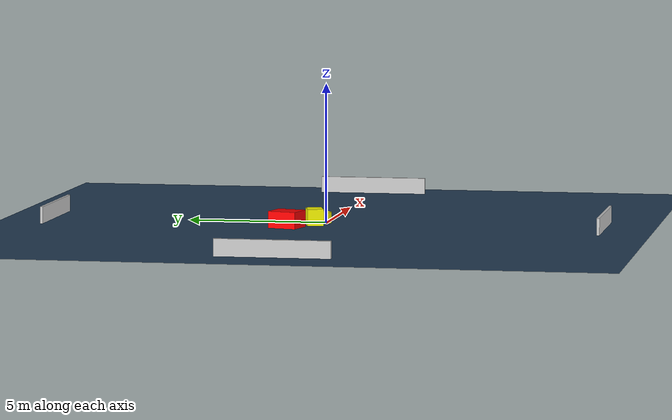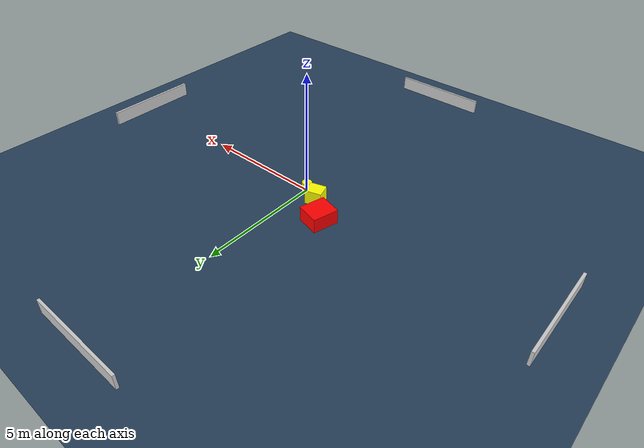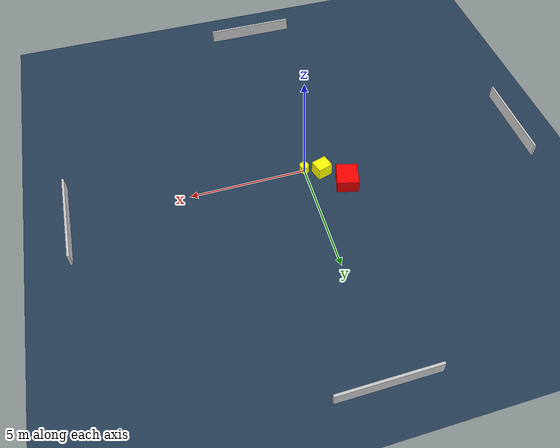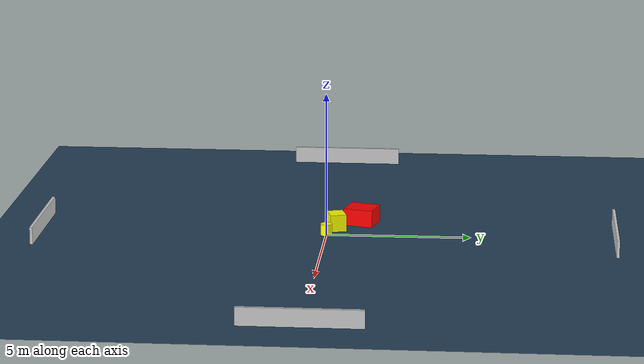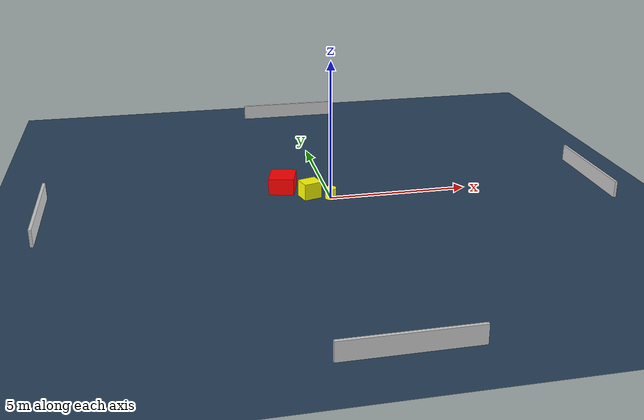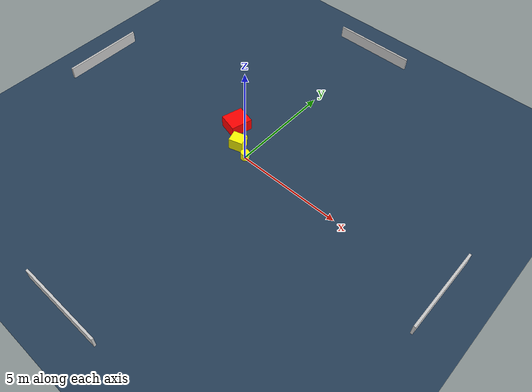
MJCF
<?xml version="1.0" ?>
<mujoco model="generated_environment">
  <option timestep="0.01" integrator="RK4" cone="elliptic"/>
  <default>
    <geom density="1"/>
  </default>
  <asset>
    <texture builtin="gradient" height="3072" name="skybox" rgb1="0.3 0.5 0.7" rgb2="0 0 0" type="skybox" width="512"/>
    <texture builtin="checker" height="300" name="groundplane" rgb1="0.2 0.3 0.4" rgb2="0.1 0.2 0.3" type="2d" width="300"/>
    <material name="groundplane" reflectance="0.2" texrepeat="5 5" texture="groundplane"/>
  </asset>
  <worldbody>
    <light dir="0 0 -1" directional="true" pos="0 0 1.5"/>
    <geom condim="3" friction="0.5 0.005 0.001" material="groundplane" name="floor" pos="0 0 0" size="0 0 0.05" type="plane"/>
    <body name="walls">
      <geom name="wall_1" condim="4" pos="-10.0 0.0 0.3" rgba="0.800000011920929 0.800000011920929 0.800000011920929 1.0" size="0.05 2.0 0.3" type="box"/>
      <geom name="wall_2" condim="4" pos="10.0 0.0 0.3" rgba="0.800000011920929 0.800000011920929 0.800000011920929 1.0" size="0.05 2.0 0.3" type="box"/>
      <geom name="wall_3" condim="4" pos="0.0 -10.0 0.3" rgba="0.800000011920929 0.800000011920929 0.800000011920929 1.0" size="2.0 0.05 0.3" type="box"/>
      <geom name="wall_4" condim="4" pos="0.0 10.0 0.3" rgba="0.800000011920929 0.800000011920929 0.800000011920929 1.0" size="2.0 0.05 0.3" type="box"/>
    </body>
    <body name="robot">
      <joint name="joint_x" type="slide" pos="0 0 0" axis="1 0 0"/>
      <joint name="joint_y" type="slide" pos="0 0 0" axis="0 1 0"/>
      <geom name="robot" type="cylinder" pos="0.0 0.0 0.2" size="0.2 0.2 0.0" mass="5.0" friction="1.0 0.005 0.0001" condim="4" rgba="1.0 1.0 0.0 1.0"/>
    </body>
    <body name="obstacle_1_movable">
      <geom name="obstacle_1_movable" condim="4" pos="-0.7040633838320949 0.2968359296281082 0.3" euler="0 0 16.747245281183964" friction="0.0 0.005 0.001" rgba="1.0 1.0 0.0 1.0" size="0.33220461780897137 0.28475141598632314 0.3" type="box" mass="0.1"/>
      <joint type="free"/>
    </body>
    <body name="obstacle_2_static">
      <geom name="obstacle_2_static" condim="4" pos="-1.5661246606402737 1.134377358723375 0.3" euler="0 0 255.2264571099486" friction="0.0 0.005 0.001" rgba="1.0 0.0 0.0 1.0" size="0.520869387445253 0.4594024932275691 0.3" type="box"/>
    </body>
  </worldbody>
  <actuator>
    <motor name="actuator_x" joint="joint_x" gear="1" ctrlrange="-1 1"/>
    <motor name="actuator_y" joint="joint_y" gear="1" ctrlrange="-1 1"/>
  </actuator>
</mujoco>
